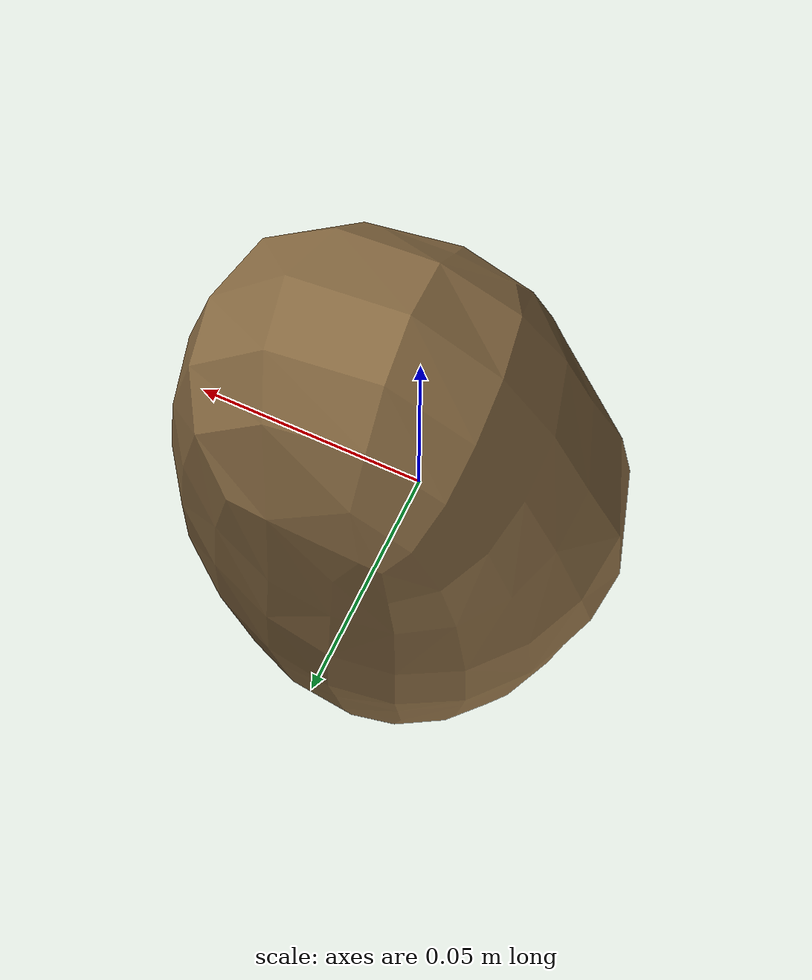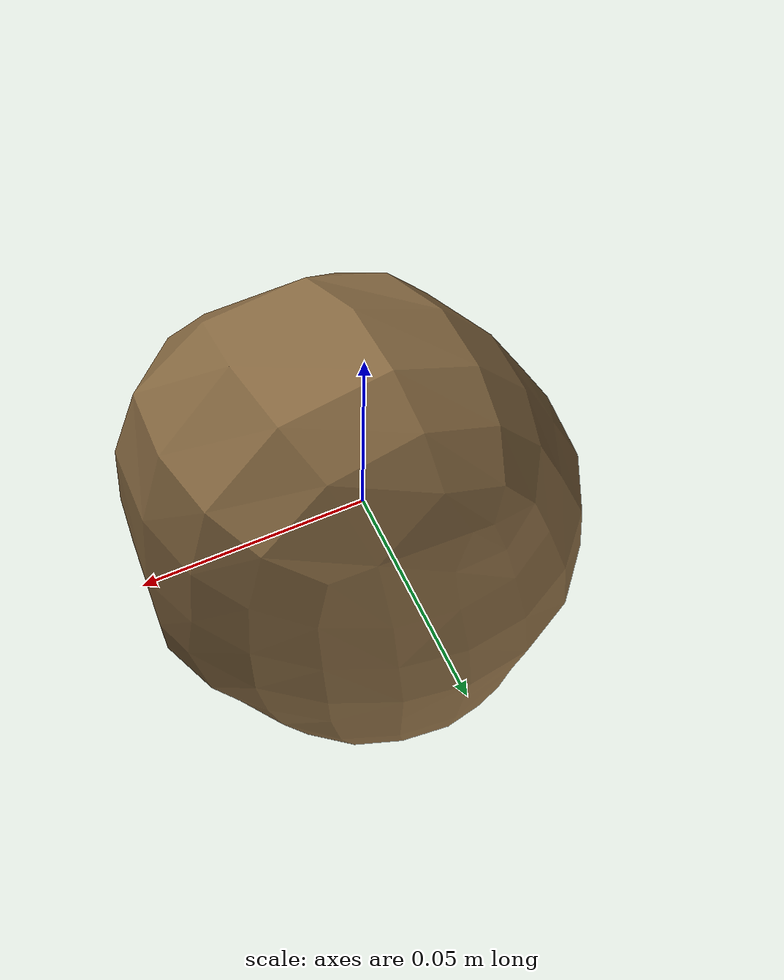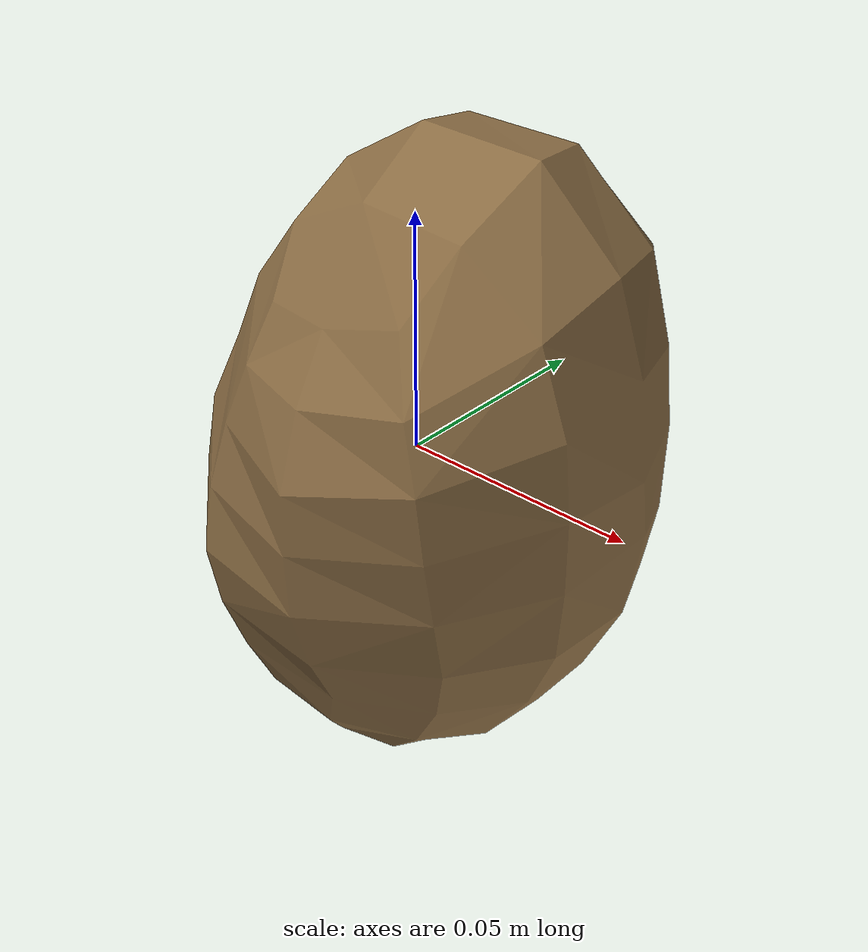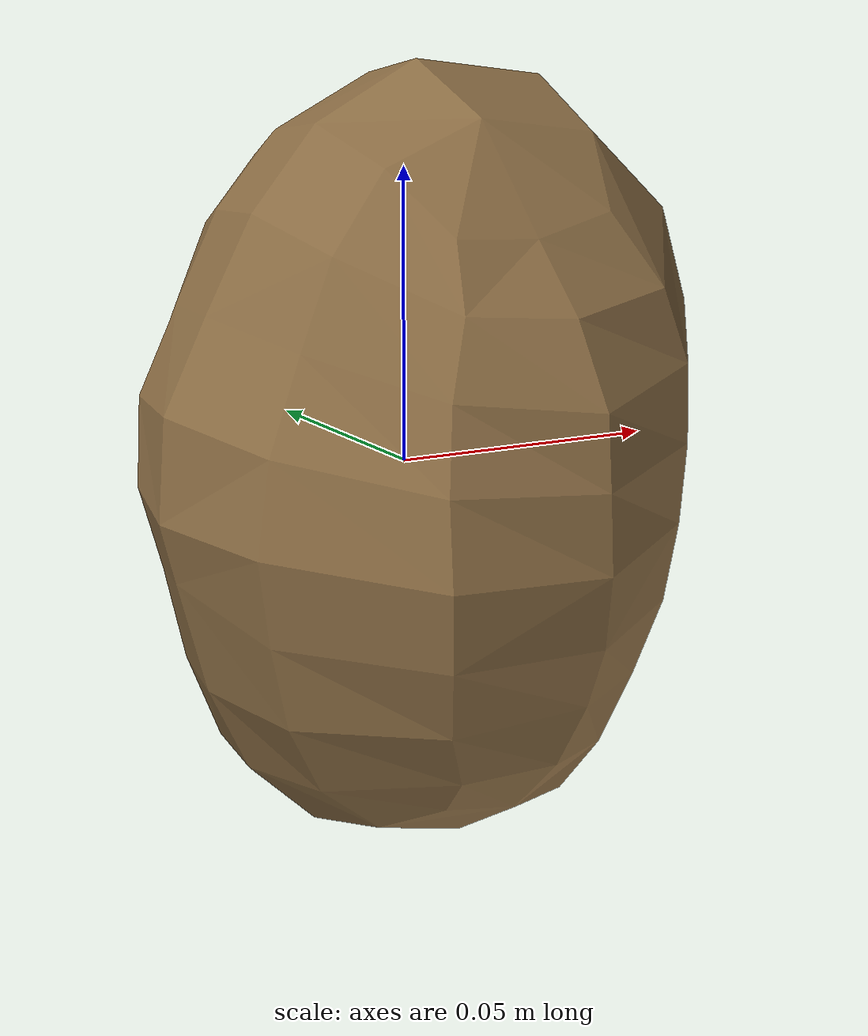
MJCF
<mujoco model="Potato_17">
  <compiler autolimits="true" boundmass="0.01" angle="radian"/>
  <default>
    <default class="/">
      <default class="__VISUAL_MJT__">
        <geom contype="0" conaffinity="0" group="0"/>
      </default>
      <default class="__STRUCTURAL_MJT__">
        <geom contype="8" conaffinity="15" group="4" friction="0.90000000000000002 0.90000000000000002 0.001" solref="0.025000000000000001 1" solimp="0.998 0.998 0.001"/>
      </default>
      <default class="__DYNAMIC_MJT__">
        <geom contype="1" conaffinity="15" group="4" friction="0.90000000000000002 0.90000000000000002 0.001" solref="0.025000000000000001 1" solimp="0.998 0.998 0.001"/>
      </default>
    </default>
  </default>
  <asset>
    <texture name="Potato2_Mat2" type="2d" file="Potato2_AlbedoTransparency.png"/>
    <material name="material_Potato2_Mat2" class="/" texture="Potato2_Mat2" specular="0.5" shininess="0.5" rgba="0.72794119999999995 0.59305790000000003 0.3907331 1"/>
    <mesh name="Potato_17_potato_b7" class="/" file="Potato_17_potato_b7/Potato_17_potato_b7.obj" scale="1 1 1"/>
  </asset>
  <worldbody>
    <body name="Potato_17">
      <joint name="Potato_17_free" class="/" type="free" pos="0 0 0" axis="0 0 1" stiffness="0" range="0 0" armature="0" damping="0.10000000000000001" frictionloss="0"/>
      <body name="Potato_17_potato_b7" pos="0.0015200000000000001 0.0056709851074218751 0.0062175958251953125" quat="0.9996066689491272 0.028043901547789574 0 0">
        <geom name="Potato_17_potato_b7" class="__VISUAL_MJT__" type="mesh" material="material_Potato2_Mat2" shellinertia="true" mesh="Potato_17_potato_b7"/>
        <geom name="Potato_17_PrimitiveCollider_0" class="__DYNAMIC_MJT__" type="capsule" size="0.047743499279022217 0.019898474216461182" rgba="0 1 0 1" pos="0.0015185177326202393 -0.00038397253956645727 0.0014942002017050982" quat="1.4751396609986736e-06 0.99999999999891198 0 0"/>
      </body>
    </body>
  </worldbody>
</mujoco>
